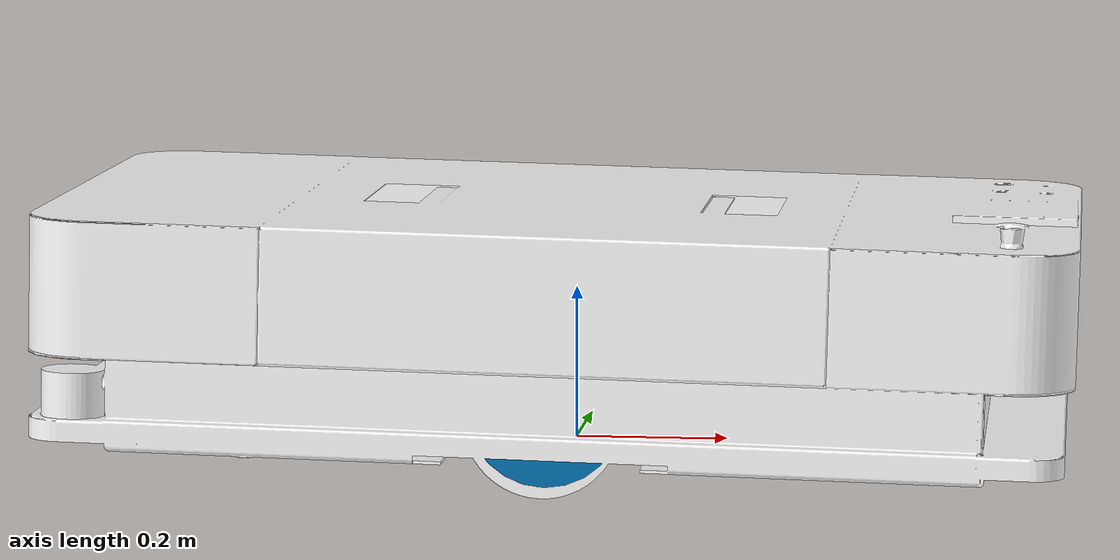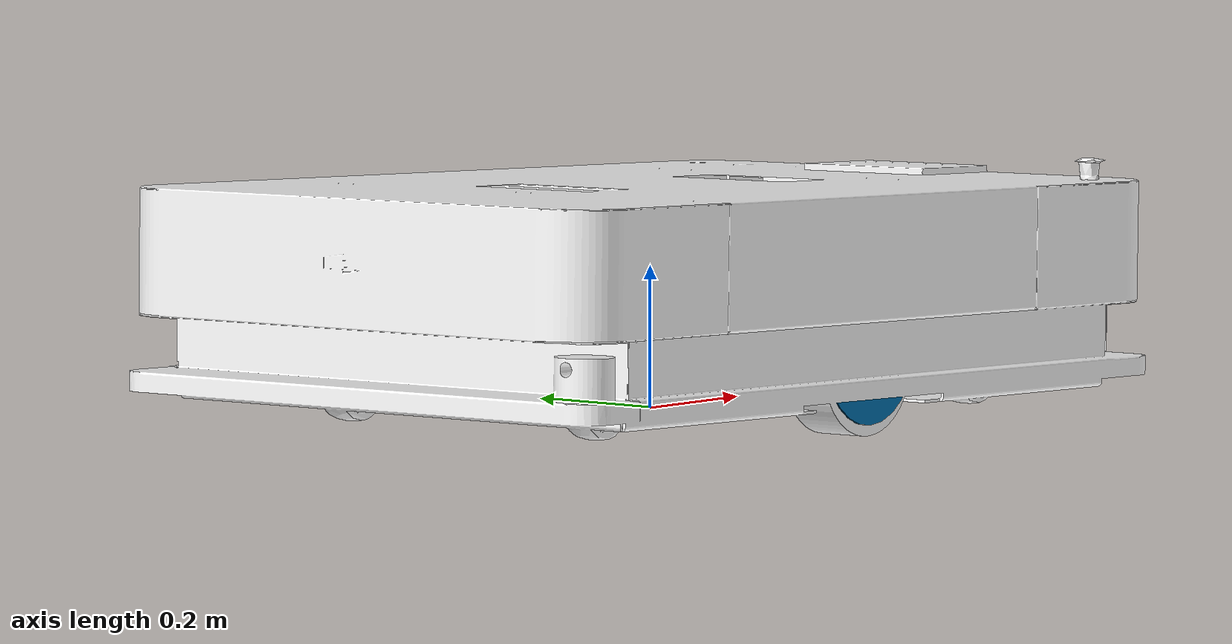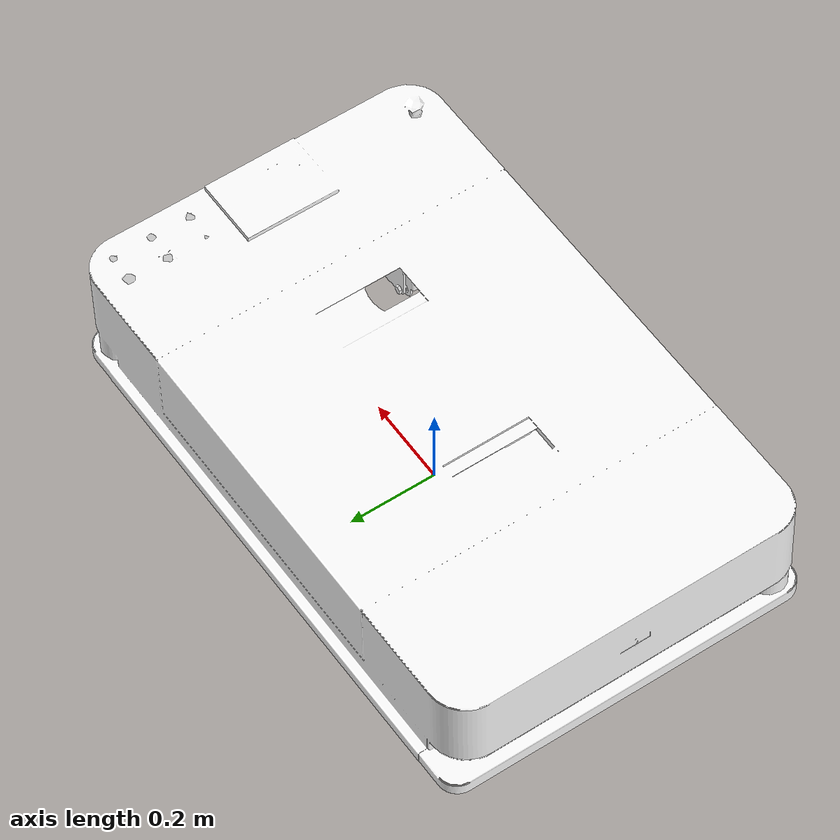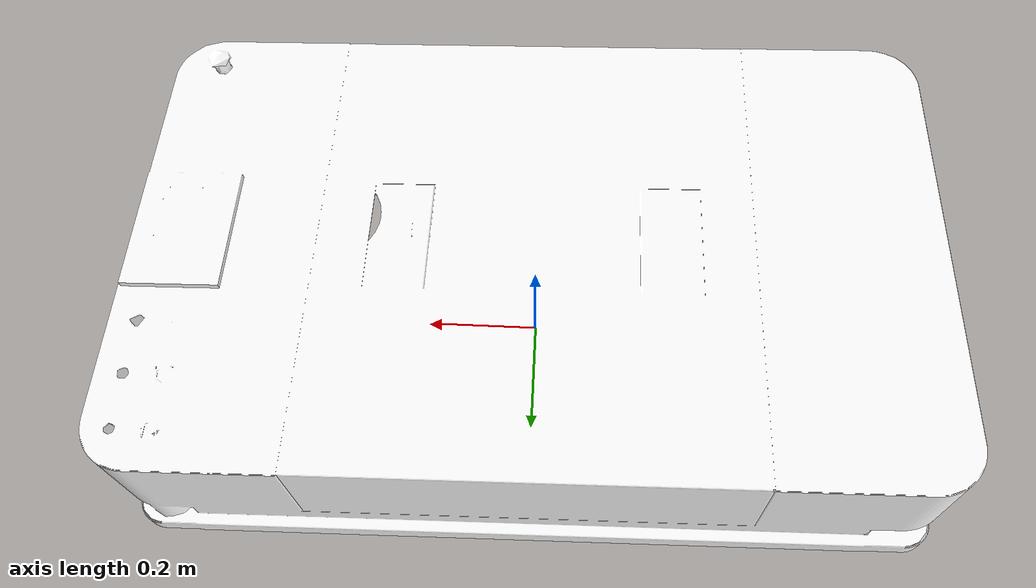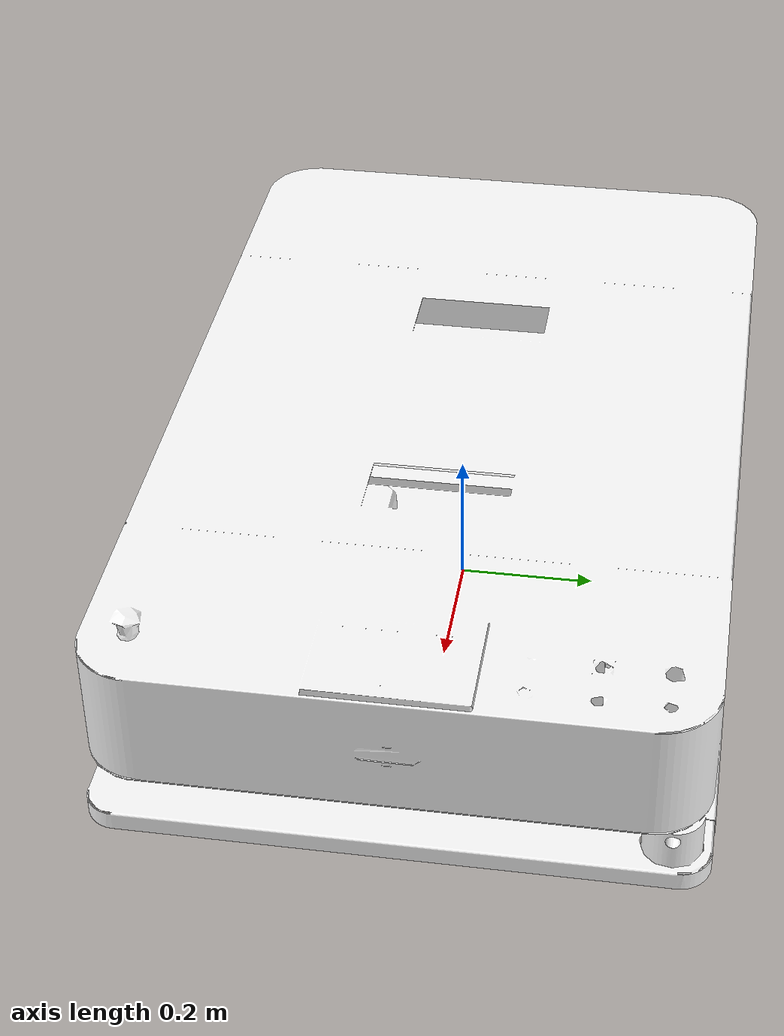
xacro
<?xml version="1.0"?>

<robot xmlns:xacro="http://ros.org/wiki/xacro" name="arima">
  <!-- robot name parameter -->
  <xacro:arg name="name" default="arima" />

  <xacro:arg name="prefix" default="" />
  <xacro:arg name="gazebo_controllers" default="$(find onix_control)/config/control.yaml" />

  <xacro:include filename="$(find onix_description)/urdf/onix_macro.urdf.xacro" />

  <!-- Load onix description -->
  <xacro:onix prefix="" />

  <xacro:if value="$(arg is_sim)">

    <gazebo>
      <plugin name="$(arg prefix)gazebo_ros2_control" filename="libgazebo_ros2_control.so">
        <parameters>$(arg gazebo_controllers)</parameters>
      </plugin>
    </gazebo>

    <gazebo>
      <plugin name="$(arg prefix)imu_controller" filename="libhector_gazebo_ros_imu.so">
        <robotNamespace>$(arg robot_namespace)</robotNamespace>
        <updateRate>50.0</updateRate>
        <bodyName>$(arg prefix)base_link</bodyName>
        <topicName>$(arg prefix)imu/data</topicName>
        <accelDrift>0.005 0.005 0.005</accelDrift>
        <accelGaussianNoise>0.005 0.005 0.005</accelGaussianNoise>
        <rateDrift>0.005 0.005 0.005 </rateDrift>
        <rateGaussianNoise>0.005 0.005 0.005 </rateGaussianNoise>
        <headingDrift>0.005</headingDrift>
        <headingGaussianNoise>0.005</headingGaussianNoise>
      </plugin>
    </gazebo>

    <gazebo>
      <plugin name="$(arg prefix)gps_controller" filename="libhector_gazebo_ros_gps.so">
        <robotNamespace>$(arg robot_namespace)</robotNamespace>
        <updateRate>40</updateRate>
        <bodyName>$(arg prefix)base_link</bodyName>
        <frameId>$(arg prefix)base_link</frameId>
        <topicName>navsat/fix</topicName>
        <velocityTopicName>$(arg prefix)navsat/vel</velocityTopicName>
        <referenceLatitude>49.9</referenceLatitude>
        <referenceLongitude>8.9</referenceLongitude>
        <referenceHeading>0</referenceHeading>
        <referenceAltitude>0</referenceAltitude>
        <drift>0.0001 0.0001 0.0001</drift>
      </plugin>
    </gazebo>

  </xacro:if>

  <!-- Optional custom includes. -->

</robot>

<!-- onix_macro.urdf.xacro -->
<robot xmlns:xacro="http://ros.org/wiki/xacro">

  <xacro:arg name="laser_enabled" default="false" />
  <xacro:arg name="laser_xyz" default="$(optenv HUSKY_LMS1XX_XYZ 0.2206 0.0 0.00635)" />
  <xacro:arg name="laser_rpy" default="$(optenv HUSKY_LMS1XX_RPY 0.0 0.0 0.0)" />

  <xacro:arg name="realsense_enabled" default="true" />
  <xacro:arg name="realsense_xyz" default="$(optenv HUSKY_REALSENSE_XYZ 0 0 0)" />
  <xacro:arg name="realsense_rpy" default="$(optenv HUSKY_REALSENSE_RPY 0 0 0)" />
  <xacro:arg name="realsense_mount" default="$(optenv HUSKY_REALSENSE_MOUNT_FRAME sensor_arch_mount_link)" />

  <xacro:property name="onix_front_bumper_extend" value="$(optenv HUSKY_FRONT_BUMPER_EXTEND 0)" />
  <xacro:property name="onix_rear_bumper_extend" value="$(optenv HUSKY_REAR_BUMPER_EXTEND 0)" />

  <xacro:arg name="robot_namespace" default="/" />
  <xacro:arg name="is_sim" default="false" />
  <xacro:arg name="urdf_extras" default="empty.urdf" />

  <!-- Included URDF/XACRO Files -->

  <xacro:property name="M_PI" value="3.14159"/>

  <xacro:macro name="onix" params="prefix">

    <!-- Base Size -->
    <xacro:property name="base_x_size" value="1.040000" />
    <xacro:property name="base_y_size" value="0.800000" />
    <xacro:property name="base_z_size" value="0.30000" />

    <!-- Wheel Mounting Positions -->
    <xacro:property name="wheelbase" value="0.700" />
    <xacro:property name="track" value="0.00" />
    <xacro:property name="wheel_vertical_offset" value="0.03282" />

    <!-- Wheel Properties -->
    <xacro:property name="wheel_length" value="0.07" />
    <xacro:property name="wheel_radius" value="0.1" />

    <!-- Base link is the center of the robot's bottom plate -->
    <link name="${prefix}base_link">
      <visual>
        <origin xyz="-0.52 0.87 0.12" rpy="0 0 1.57" />
        <geometry>
          <mesh filename="file://$(find onix_description)/meshes/arima.stl" scale="0.001 0.001 0.001"/>
        </geometry>
        <material name="yellow">
          <color rgba="1 1 1 1"/>
        </material>
      </visual>
      <collision>
        <origin xyz="0 0 ${base_z_size/4}" rpy="0 0 0" />
        <geometry>
          <box size="${ base_x_size} ${base_y_size} ${base_z_size/2}"/>
        </geometry>
      </collision>
      <collision>
        <origin xyz="0 0 ${base_z_size*3/4-0.01}" rpy="0 0 0" />
        <geometry>
          <box size="${base_x_size*4/5} ${base_y_size} ${base_z_size/2-0.02}"/>
        </geometry>
      </collision>
    </link>

    <!-- Base footprint is on the ground under the robot -->
    <link name="${prefix}base_footprint"/>

    <joint name="${prefix}base_footprint_joint" type="fixed">
      <origin xyz="0 0 0" rpy="0 0 0" />
      <parent link="${prefix}base_link" />
      <child link="${prefix}base_footprint" />

    </joint>

    <!-- Inertial link stores the robot's inertial information -->
    <link name="${prefix}inertial_link">
      <inertial>
        <mass value="46.034" />
        <origin xyz="-0.00065 -0.085 0.062" />
        <inertia ixx="0.6022" ixy="-0.02364" ixz="-0.1197" iyy="1.7386" iyz="-0.001544" izz="2.0296" />
      </inertial>
    </link>

    <joint name="${prefix}inertial_joint" type="fixed">
      <origin xyz="0 0 0" rpy="0 0 0" />
      <parent link="${prefix}base_link" />
      <child link="${prefix}inertial_link" />
    </joint>

    <gazebo reference="${prefix}inertial_link">
      <mu1>0.2</mu1>
      <mu2>0.2</mu2>
      <material>
        <color rgba="0.8 0.0 0.0 1.0"/>
      </material>
    </gazebo>
  <!-- wheel for the robot -->

    <link name="${prefix}left_wheel">
      <inertial>
        <mass value="2.637" />
        <origin xyz="0 0 0" rpy="${M_PI/2} 0 0"/>
        <inertia  ixx="0.02467" ixy="0" ixz="0" iyy="0.04411" iyz="0" izz="0.02467" />
      </inertial>
      <visual>
        <origin xyz="0 0 0" rpy="${M_PI/2} 0 0" />
        <geometry>
          <cylinder length="${wheel_length}" radius="${wheel_radius}" />
        </geometry>
      </visual>
      <collision>
        <origin xyz="0 0 0" rpy="${M_PI/2} 0 0" />
        <geometry>
          <cylinder length="${wheel_length}" radius="${wheel_radius}" />
        </geometry>
      </collision>
    </link>

    <gazebo reference="${prefix}left_wheel">
      <mu1 value="1.0"/>
      <mu2 value="0.5"/>
      <kp value="10000000.0" />
      <kd value="1.0" />
      <fdir1 value="1 0 0"/>
    </gazebo>

    <joint name="${prefix}left_wheel_joint" type="continuous">
      <parent link="${prefix}base_link"/>
      <child link="${prefix}left_wheel"/>
      <origin xyz="0 0.35  0.1" rpy="0 0 0" />
      <axis xyz="0 1 0" rpy="0 0 0" />
    </joint>

    <link name="${prefix}right_wheel">
      <inertial>
        <mass value="2.637" />
        <origin xyz="0 0 0" rpy="${M_PI/2} 0 0"/>
        <inertia  ixx="0.02467" ixy="0" ixz="0" iyy="0.04411" iyz="0" izz="0.02467" />
      </inertial>
      <visual>
        <origin xyz="0 0 0" rpy="${M_PI/2} 0 0" />
        <geometry>
          <cylinder length="${wheel_length}" radius="${wheel_radius}" />
        </geometry>
      </visual>
      <collision>
        <origin xyz="0 0 0" rpy="${M_PI/2} 0 0" />
        <geometry>
          <cylinder length="${wheel_length}" radius="${wheel_radius}" />
        </geometry>
      </collision>
    </link>

    <gazebo reference="${prefix}right_wheel">
      <mu1 value="1.0"/>
      <mu2 value="0.5"/>
      <kp value="10000000.0" />
      <kd value="1.0" />
      <fdir1 value="1 0 0"/>
    </gazebo>

    <joint name="${prefix}right_wheel_joint" type="continuous">
      <parent link="${prefix}base_link"/>
      <child link="${prefix}right_wheel"/>
      <origin xyz="0 -0.35  0.1" rpy="0 0 0" />
      <axis xyz="0 1 0" rpy="0 0 0" />
    </joint>

  <!-- laser for the robot -->
    <link name="${prefix}front_laser">

      <collision>
        <origin xyz="0 0 .0585" rpy="0 0 0" />
        <geometry>
          <box size=".1 .108 .117" />
        </geometry>
      </collision>
    </link>

    <joint name="front_laser_mount_joint" type="fixed">
        <origin xyz="0.6 0.37 0.09" rpy="0 0 0" />
        <parent link="${prefix}base_link" />
        <child link="${prefix}front_laser" />
    </joint>

    <gazebo reference="${prefix}front_laser">
      <mu1>0.2</mu1>
      <mu2>0.2</mu2>
      <material>
        <color rgba="0.8 0.0 0.0 1.0"/>
      </material>
    </gazebo>

    <link name="${prefix}rear_laser">

      <collision>
        <origin xyz="0 0 .0585" rpy="0 0 0" />
        <geometry>
          <box size=".1 .108 .117" />
        </geometry>
      </collision>
    </link>

    <joint name="rear_laser_mount_joint" type="fixed">
        <origin xyz="-0.6 -0.37 0.09" rpy="0 0 3.14" />
        <parent link="${prefix}base_link" />
        <child link="${prefix}rear_laser" />
    </joint>

    <gazebo reference="${prefix}rear_laser">
      <mu1>0.2</mu1>
      <mu2>0.2</mu2>
      <material>
        <color rgba="0.8 0.0 0.0 1.0"/>
      </material>
    </gazebo>

  <!-- rear camera  -->
    <link name="${prefix}rear_camera">
      <collision>
        <origin xyz="0 0 .0585" rpy="0 0 0" />
        <geometry>
          <box size=".1 .108 .117" />
        </geometry>
      </collision>
    </link>

    <joint name="rear_camera_mount_joint" type="fixed">
        <origin xyz="-0.6 0 0.25" rpy="0 -1.57 0" />
        <parent link="${prefix}base_link" />
        <child link="${prefix}rear_camera" />
    </joint>

    <gazebo reference="${prefix}rear_camera">
      <mu1>0.2</mu1>
      <mu2>0.2</mu2>
      <material>
        <color rgba="0.8 0.0 0.0 1.0"/>
      </material>
    </gazebo>

    <!-- front intel realsense -->
    <link name="${prefix}_realsense">
      <collision>
        <origin xyz="0 0 .0585" rpy="0 0 0" />
        <geometry>
          <box size=".1 .108 .117" />
        </geometry>
      </collision>
    </link>

    <joint type="fixed" name="${prefix}_realsense_lens_joint">
      <origin xyz="0.6 0 0.2" rpy="0 0 0" />
      <parent link="${prefix}base_link" />
      <child link="${prefix}_realsense" />
    </joint>

    <gazebo reference="${prefix}_realsense">
      <mu1>0.2</mu1>
      <mu2>0.2</mu2>
      <material>
        <color rgba="0.8 0.0 0.0 1.0"/>
      </material>
    </gazebo>

    <!-- ros control -->
    <ros2_control name="${prefix}onix_hardware" type="system">
      <hardware>
        <xacro:if value="$(arg is_sim)">
          <plugin>gazebo_ros2_control/GazeboSystem</plugin>
         </xacro:if>
        <xacro:unless value="$(arg is_sim)">
          <plugin>onix_hardware/OnixHardware</plugin>
          <plugin>fake_components/GenericSystem</plugin>
          <param name="hw_start_duration_sec">2.0</param>
          <param name="hw_stop_duration_sec">3.0</param>
          <param name="wheel_diameter">0.2</param>
          <param name="max_accel">5.0</param>
          <param name="max_speed">23.0</param>
          <param name="polling_timeout">10.0</param>
          <param name="serial_port">/dev/ttyUSB0</param>
        </xacro:unless>
      </hardware>
      <joint name="${prefix}left_wheel_joint">
        <command_interface name="velocity">
          <param name="min">-1</param>
          <param name="max">1</param>
        </command_interface>
        <state_interface name="position"/>
        <state_interface name="velocity"/>
      </joint>

      <joint name="${prefix}right_wheel_joint">
        <command_interface name="velocity">
          <param name="min">-1</param>
          <param name="max">1</param>
        </command_interface>
        <state_interface name="position"/>
        <state_interface name="velocity"/>
      </joint>

    </ros2_control>

  </xacro:macro>

</robot>
